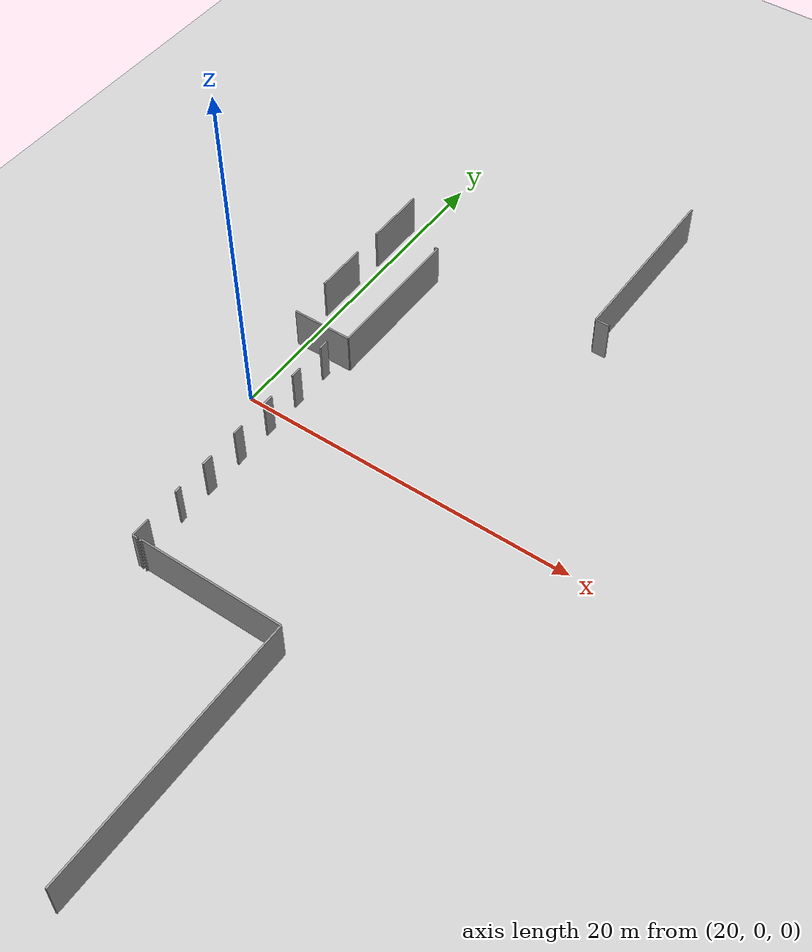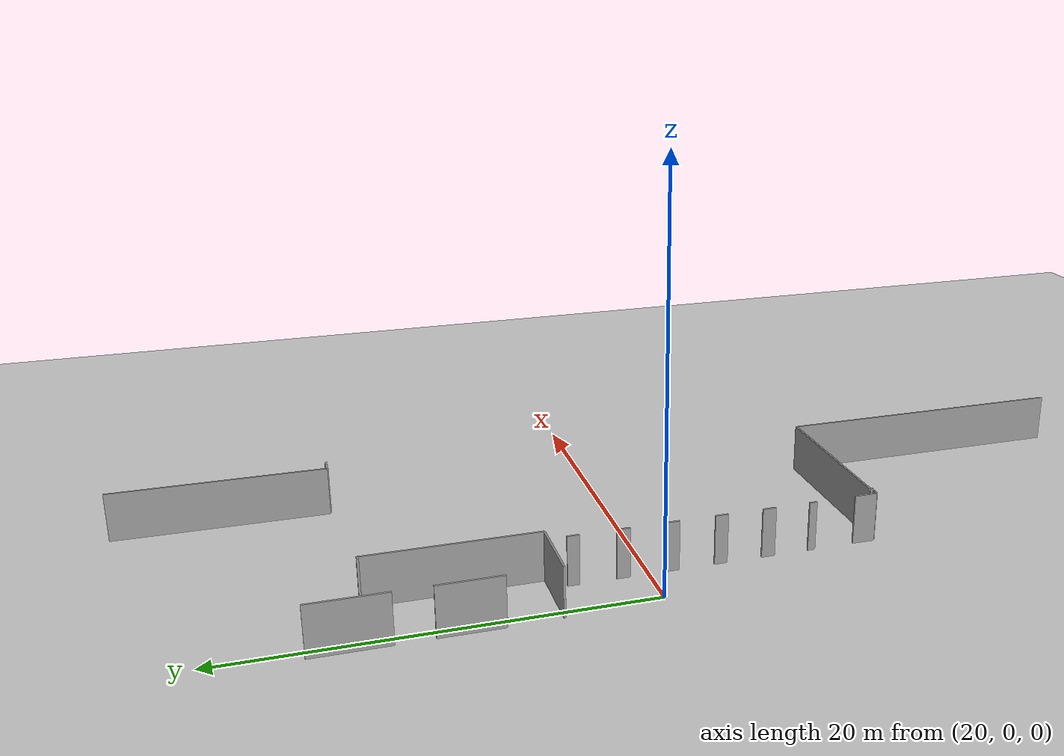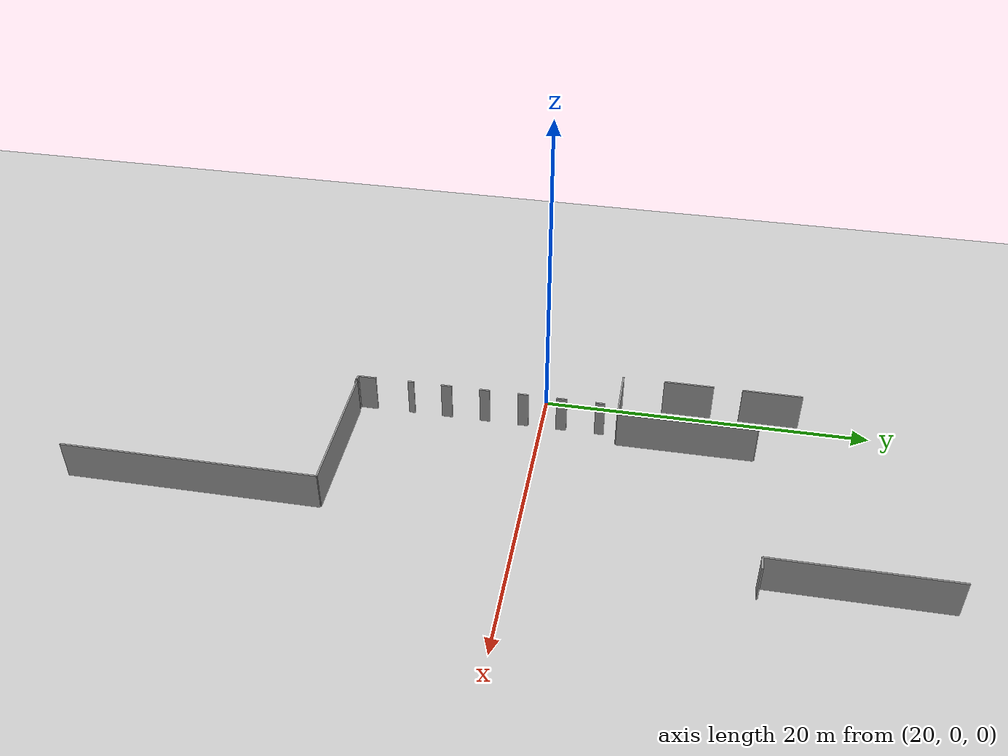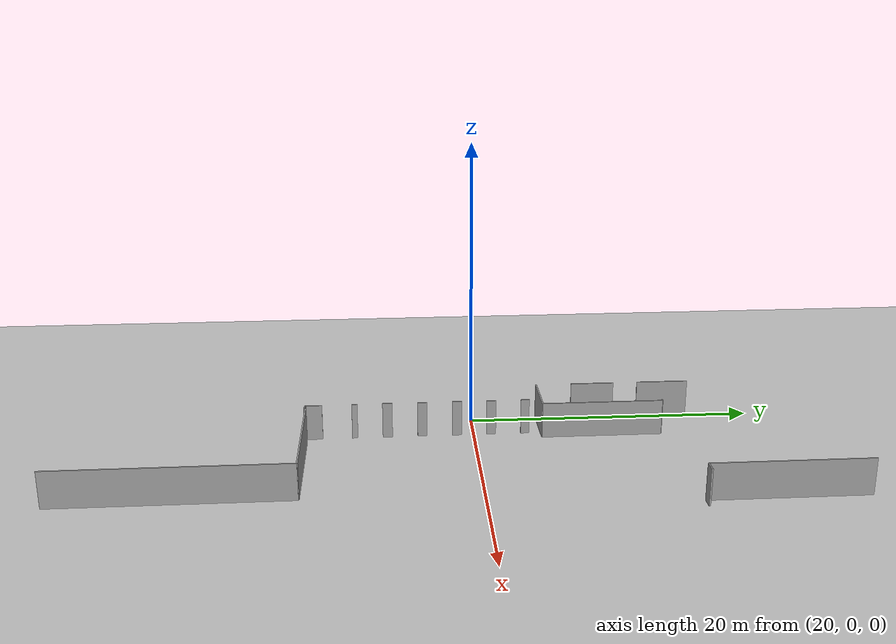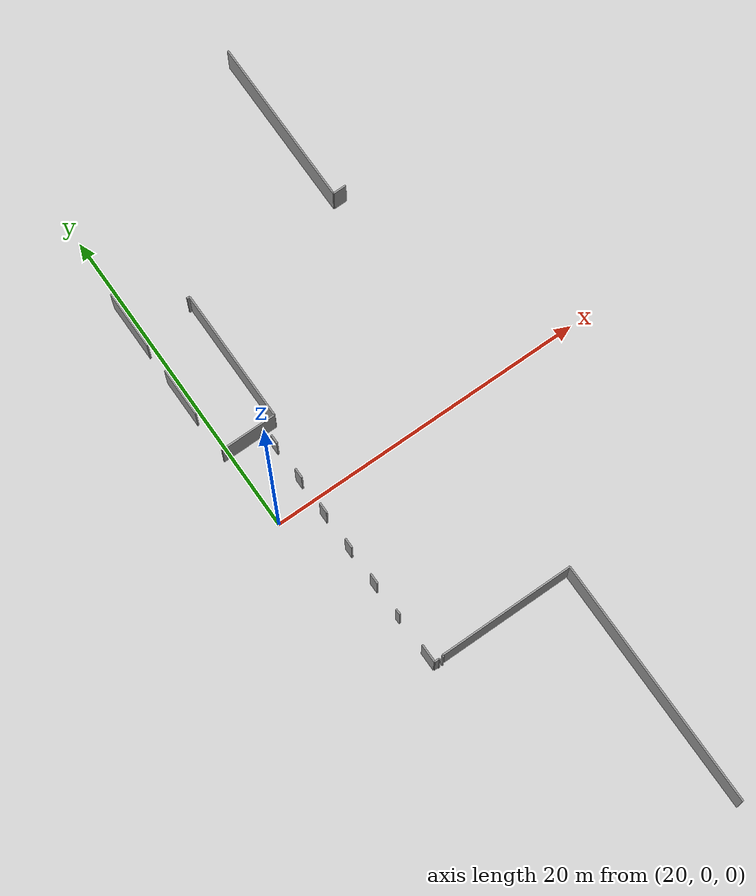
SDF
<sdf version="1.6">
 <world name="default">
  <model name="ground_plane">
   <static>1</static>
   <link name="link">
    <collision name="collision">
     <geometry><plane><normal>0 0 1</normal><size>100 100</size></plane></geometry>
     <surface><friction><ode><mu>100</mu><mu2>50</mu2></ode></friction></surface>
    </collision>
    <visual name="visual">
     <cast_shadows>0</cast_shadows>
     <geometry><plane><normal>0 0 1</normal><size>100 100</size></plane></geometry>
     <material>
      <script><uri>file://media/materials/scripts/gazebo.material</uri><name>Gazebo/Grey</name></script>
     </material>
    </visual>
   </link>
  </model>
  <model name="50053292">
   <static>1</static>
   <link name="Wall_120">
    <collision name="Wall_120_Collision">
     <geometry><box><size>1.13584261029 0.1 2.5</size></box></geometry>
     <pose>0.567921305146 0 1.25 0 0 0</pose>
    </collision>
    <visual name="Wall_120_Visual">
     <pose>0.567921305146 0 1.25 0 0 0</pose>
     <geometry><box><size>1.13584261029 0.1 2.5</size></box></geometry>
     <material>
      <script><uri>file://media/materials/scripts/gazebo.material</uri><name>Gazebo/Grey</name></script>
      <ambient>1 1 1 1</ambient>
     </material>
    </visual>
    <pose>70.86207444 -46.422978491 0 0 0 -1.57079632679</pose>
   </link>
   <link name="Wall_121">
    <collision name="Wall_121_Collision">
     <geometry><box><size>0.300630600309 0.1 2.5</size></box></geometry>
     <pose>0.150315300154 0 1.25 0 0 0</pose>
    </collision>
    <visual name="Wall_121_Visual">
     <pose>0.150315300154 0 1.25 0 0 0</pose>
     <geometry><box><size>0.300630600309 0.1 2.5</size></box></geometry>
     <material>
      <script><uri>file://media/materials/scripts/gazebo.material</uri><name>Gazebo/Grey</name></script>
      <ambient>1 1 1 1</ambient>
     </material>
    </visual>
    <pose>70.86207444 -47.5588211013 0 0 0 0.0</pose>
   </link>
   <link name="Wall_122">
    <collision name="Wall_122_Collision">
     <geometry><box><size>0.0799114530358 0.1 2.5</size></box></geometry>
     <pose>0.0399557265179 0 1.25 0 0 0</pose>
    </collision>
    <visual name="Wall_122_Visual">
     <pose>0.0399557265179 0 1.25 0 0 0</pose>
     <geometry><box><size>0.0799114530358 0.1 2.5</size></box></geometry>
     <material>
      <script><uri>file://media/materials/scripts/gazebo.material</uri><name>Gazebo/Grey</name></script>
      <ambient>1 1 1 1</ambient>
     </material>
    </visual>
    <pose>71.1627050404 -47.5588211013 0 0 0 -1.54695346911</pose>
   </link>
   <link name="Wall_127">
    <collision name="Wall_127_Collision">
     <geometry><box><size>0.583225904781 0.1 2.5</size></box></geometry>
     <pose>0.291612952391 0 1.25 0 0 0</pose>
    </collision>
    <visual name="Wall_127_Visual">
     <pose>0.291612952391 0 1.25 0 0 0</pose>
     <geometry><box><size>0.583225904781 0.1 2.5</size></box></geometry>
     <material>
      <script><uri>file://media/materials/scripts/gazebo.material</uri><name>Gazebo/Grey</name></script>
      <ambient>1 1 1 1</ambient>
     </material>
    </visual>
    <pose>70.8213045107 -32.1009214512 0 0 0 -1.57079632679</pose>
   </link>
   <link name="Wall_128">
    <collision name="Wall_128_Collision">
     <geometry><box><size>0.653588960367 0.1 2.5</size></box></geometry>
     <pose>0.326794480183 0 1.25 0 0 0</pose>
    </collision>
    <visual name="Wall_128_Visual">
     <pose>0.326794480183 0 1.25 0 0 0</pose>
     <geometry><box><size>0.653588960367 0.1 2.5</size></box></geometry>
     <material>
      <script><uri>file://media/materials/scripts/gazebo.material</uri><name>Gazebo/Grey</name></script>
      <ambient>1 1 1 1</ambient>
     </material>
    </visual>
    <pose>70.8213045107 -34.4312848878 0 0 0 -1.57079632679</pose>
   </link>
   <link name="Wall_129">
    <collision name="Wall_129_Collision">
     <geometry><box><size>0.668068000686 0.1 2.5</size></box></geometry>
     <pose>0.334034000343 0 1.25 0 0 0</pose>
    </collision>
    <visual name="Wall_129_Visual">
     <pose>0.334034000343 0 1.25 0 0 0</pose>
     <geometry><box><size>0.668068000686 0.1 2.5</size></box></geometry>
     <material>
      <script><uri>file://media/materials/scripts/gazebo.material</uri><name>Gazebo/Grey</name></script>
      <ambient>1 1 1 1</ambient>
     </material>
    </visual>
    <pose>70.8213045107 -36.8058475001 0 0 0 -1.57079632679</pose>
   </link>
   <link name="Wall_130">
    <collision name="Wall_130_Collision">
     <geometry><box><size>0.638982910922 0.1 2.5</size></box></geometry>
     <pose>0.319491455461 0 1.25 0 0 0</pose>
    </collision>
    <visual name="Wall_130_Visual">
     <pose>0.319491455461 0 1.25 0 0 0</pose>
     <geometry><box><size>0.638982910922 0.1 2.5</size></box></geometry>
     <material>
      <script><uri>file://media/materials/scripts/gazebo.material</uri><name>Gazebo/Grey</name></script>
      <ambient>1 1 1 1</ambient>
     </material>
    </visual>
    <pose>70.8213045107 -39.2313407718 0 0 0 -1.57079632679</pose>
   </link>
   <link name="Wall_131">
    <collision name="Wall_131_Collision">
     <geometry><box><size>0.668195009811 0.1 2.5</size></box></geometry>
     <pose>0.334097504906 0 1.25 0 0 0</pose>
    </collision>
    <visual name="Wall_131_Visual">
     <pose>0.334097504906 0 1.25 0 0 0</pose>
     <geometry><box><size>0.668195009811 0.1 2.5</size></box></geometry>
     <material>
      <script><uri>file://media/materials/scripts/gazebo.material</uri><name>Gazebo/Grey</name></script>
      <ambient>1 1 1 1</ambient>
     </material>
    </visual>
    <pose>70.8213045107 -41.6203824245 0 0 0 -1.57079632679</pose>
   </link>
   <link name="Wall_132">
    <collision name="Wall_132_Collision">
     <geometry><box><size>0.381517359331 0.1 2.5</size></box></geometry>
     <pose>0.190758679666 0 1.25 0 0 0</pose>
    </collision>
    <visual name="Wall_132_Visual">
     <pose>0.190758679666 0 1.25 0 0 0</pose>
     <geometry><box><size>0.381517359331 0.1 2.5</size></box></geometry>
     <material>
      <script><uri>file://media/materials/scripts/gazebo.material</uri><name>Gazebo/Grey</name></script>
      <ambient>1 1 1 1</ambient>
     </material>
    </visual>
    <pose>70.8213045107 -44.0167906064 0 0 0 -1.52717190565</pose>
   </link>
   <link name="Wall_137">
    <collision name="Wall_137_Collision">
     <geometry><box><size>0.132470518007 0.1 2.5</size></box></geometry>
     <pose>0.0662352590034 0 1.25 0 0 0</pose>
    </collision>
    <visual name="Wall_137_Visual">
     <pose>0.0662352590034 0 1.25 0 0 0</pose>
     <geometry><box><size>0.132470518007 0.1 2.5</size></box></geometry>
     <material>
      <script><uri>file://media/materials/scripts/gazebo.material</uri><name>Gazebo/Grey</name></script>
      <ambient>1 1 1 1</ambient>
     </material>
    </visual>
    <pose>71.4036413516 -47.6449332885 0 0 0 1.57079632679</pose>
   </link>
   <link name="Wall_138">
    <collision name="Wall_138_Collision">
     <geometry><box><size>8.48598771822 0.1 2.5</size></box></geometry>
     <pose>4.24299385911 0 1.25 0 0 0</pose>
    </collision>
    <visual name="Wall_138_Visual">
     <pose>4.24299385911 0 1.25 0 0 0</pose>
     <geometry><box><size>8.48598771822 0.1 2.5</size></box></geometry>
     <material>
      <script><uri>file://media/materials/scripts/gazebo.material</uri><name>Gazebo/Grey</name></script>
      <ambient>1 1 1 1</ambient>
     </material>
    </visual>
    <pose>71.4036413516 -47.5124627705 0 0 0 0.0</pose>
   </link>
   <link name="Wall_139">
    <collision name="Wall_139_Collision">
     <geometry><box><size>15.5459389911 0.1 2.5</size></box></geometry>
     <pose>7.77296949555 0 1.25 0 0 0</pose>
    </collision>
    <visual name="Wall_139_Visual">
     <pose>7.77296949555 0 1.25 0 0 0</pose>
     <geometry><box><size>15.5459389911 0.1 2.5</size></box></geometry>
     <material>
      <script><uri>file://media/materials/scripts/gazebo.material</uri><name>Gazebo/Grey</name></script>
      <ambient>1 1 1 1</ambient>
     </material>
    </visual>
    <pose>79.8896290698 -47.5124627705 0 0 0 -1.56911332185</pose>
   </link>
   <link name="Wall_166">
    <collision name="Wall_166_Collision">
     <geometry><box><size>0.192418825293 0.1 2.5</size></box></geometry>
     <pose>0.0962094126463 0 1.25 0 0 0</pose>
    </collision>
    <visual name="Wall_166_Visual">
     <pose>0.0962094126463 0 1.25 0 0 0</pose>
     <geometry><box><size>0.192418825293 0.1 2.5</size></box></geometry>
     <material>
      <script><uri>file://media/materials/scripts/gazebo.material</uri><name>Gazebo/Grey</name></script>
      <ambient>1 1 1 1</ambient>
     </material>
    </visual>
    <pose>71.4164692733 -22.9135893414 0 0 0 0.0</pose>
   </link>
   <link name="Wall_167">
    <collision name="Wall_167_Collision">
     <geometry><box><size>8.35224710895 0.1 2.5</size></box></geometry>
     <pose>4.17612355448 0 1.25 0 0 0</pose>
    </collision>
    <visual name="Wall_167_Visual">
     <pose>4.17612355448 0 1.25 0 0 0</pose>
     <geometry><box><size>8.35224710895 0.1 2.5</size></box></geometry>
     <material>
      <script><uri>file://media/materials/scripts/gazebo.material</uri><name>Gazebo/Grey</name></script>
      <ambient>1 1 1 1</ambient>
     </material>
    </visual>
    <pose>71.6088880986 -22.9135893414 0 0 0 -1.57079632679</pose>
   </link>
   <link name="Wall_168">
    <collision name="Wall_168_Collision">
     <geometry><box><size>3.51104026824 0.1 2.5</size></box></geometry>
     <pose>1.75552013412 0 1.25 0 0 0</pose>
    </collision>
    <visual name="Wall_168_Visual">
     <pose>1.75552013412 0 1.25 0 0 0</pose>
     <geometry><box><size>3.51104026824 0.1 2.5</size></box></geometry>
     <material>
      <script><uri>file://media/materials/scripts/gazebo.material</uri><name>Gazebo/Grey</name></script>
      <ambient>1 1 1 1</ambient>
     </material>
    </visual>
    <pose>71.6088880986 -31.2658364503 0 0 0 3.14159265359</pose>
   </link>
   <link name="Wall_170">
    <collision name="Wall_170_Collision">
     <geometry><box><size>3.05393442519 0.1 2.5</size></box></geometry>
     <pose>1.52696721259 0 1.25 0 0 0</pose>
    </collision>
    <visual name="Wall_170_Visual">
     <pose>1.52696721259 0 1.25 0 0 0</pose>
     <geometry><box><size>3.05393442519 0.1 2.5</size></box></geometry>
     <material>
      <script><uri>file://media/materials/scripts/gazebo.material</uri><name>Gazebo/Grey</name></script>
      <ambient>1 1 1 1</ambient>
     </material>
    </visual>
    <pose>68.0978478304 -28.730480285 0 0 0 1.57079632679</pose>
   </link>
   <link name="Wall_171">
    <collision name="Wall_171_Collision">
     <geometry><box><size>3.66091103646 0.1 2.5</size></box></geometry>
     <pose>1.83045551823 0 1.25 0 0 0</pose>
    </collision>
    <visual name="Wall_171_Visual">
     <pose>1.83045551823 0 1.25 0 0 0</pose>
     <geometry><box><size>3.66091103646 0.1 2.5</size></box></geometry>
     <material>
      <script><uri>file://media/materials/scripts/gazebo.material</uri><name>Gazebo/Grey</name></script>
      <ambient>1 1 1 1</ambient>
     </material>
    </visual>
    <pose>68.0978478304 -23.9381719577 0 0 0 1.57079632679</pose>
   </link>
   <link name="Wall_367">
    <collision name="Wall_367_Collision">
     <geometry><box><size>0.829750617582 0.1 2.5</size></box></geometry>
     <pose>0.414875308791 0 1.25 0 0 0</pose>
    </collision>
    <visual name="Wall_367_Visual">
     <pose>0.414875308791 0 1.25 0 0 0</pose>
     <geometry><box><size>0.829750617582 0.1 2.5</size></box></geometry>
     <material>
      <script><uri>file://media/materials/scripts/gazebo.material</uri><name>Gazebo/Grey</name></script>
      <ambient>1 1 1 1</ambient>
     </material>
    </visual>
    <pose>82.4962373547 -22.5077951851 0 0 0 3.14159265359</pose>
   </link>
   <link name="Wall_368">
    <collision name="Wall_368_Collision">
     <geometry><box><size>10.5917990208 0.1 2.5</size></box></geometry>
     <pose>5.29589951038 0 1.25 0 0 0</pose>
    </collision>
    <visual name="Wall_368_Visual">
     <pose>5.29589951038 0 1.25 0 0 0</pose>
     <geometry><box><size>10.5917990208 0.1 2.5</size></box></geometry>
     <material>
      <script><uri>file://media/materials/scripts/gazebo.material</uri><name>Gazebo/Grey</name></script>
      <ambient>1 1 1 1</ambient>
     </material>
    </visual>
    <pose>81.6664867371 -22.5077951851 0 0 0 1.57079632679</pose>
   </link>
   <pose>-48.55 35.9875877157 0 0 0 0</pose>
  </model>
 </world>
</sdf>
